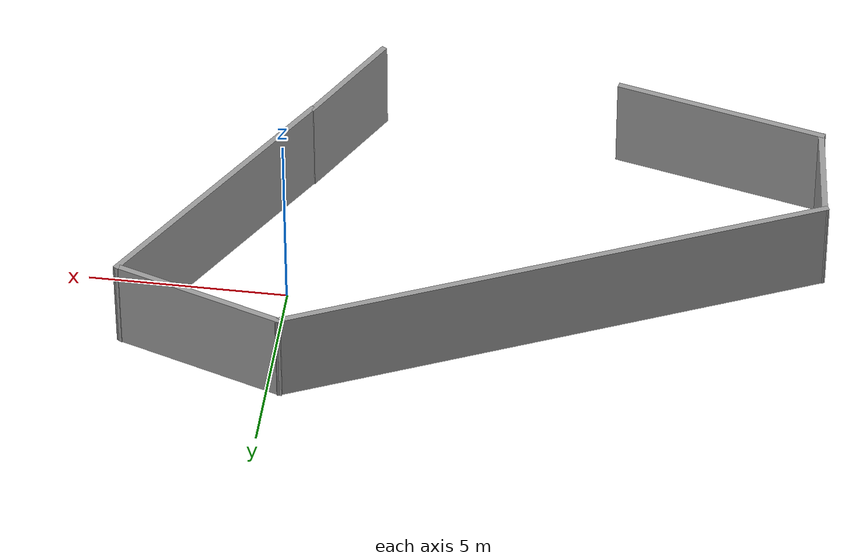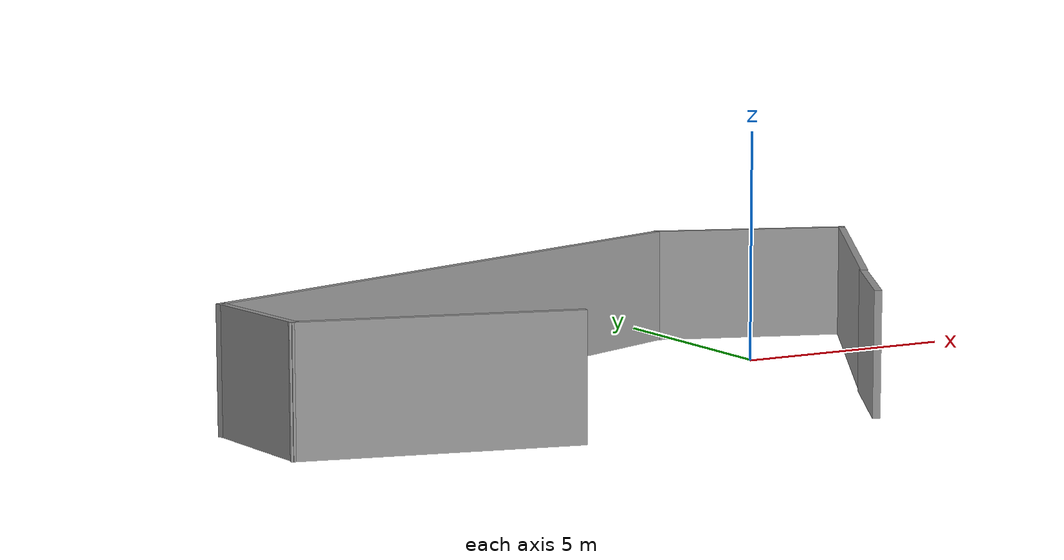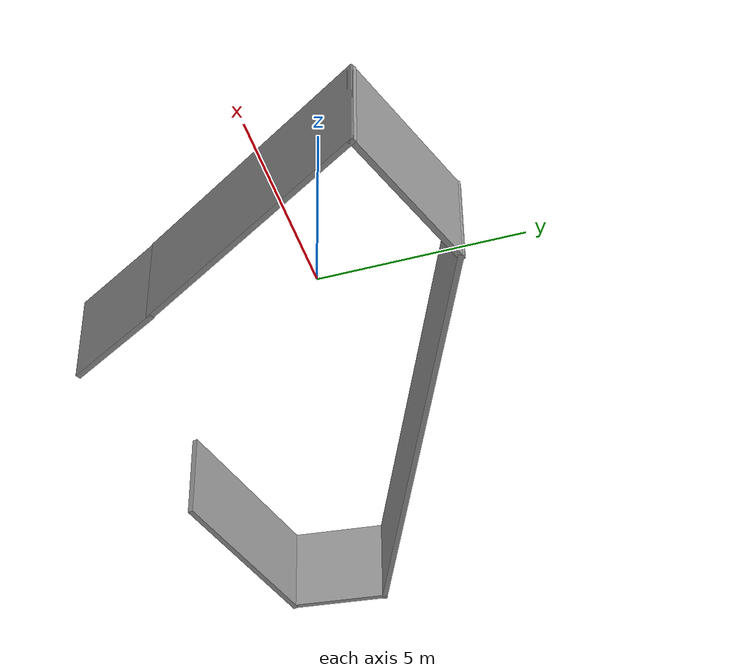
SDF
<?xml version='1.0'?>
<sdf version='1.7'>
  <model name='map_for_drone'>
    <pose>-4.65031 -1.65481 0 0 -0 0</pose>
    <link name='Wall_2'>
      <collision name='Wall_2_Collision'>
        <geometry>
          <box>
            <size>14.15 0.15 2.5</size>
          </box>
        </geometry>
        <pose>0 0 1.25 0 -0 0</pose>
      </collision>
      <visual name='Wall_2_Visual'>
        <pose>0 0 1.25 0 -0 0</pose>
        <geometry>
          <box>
            <size>14.15 0.15 2.5</size>
          </box>
        </geometry>
        <material>
          <script>
            <uri>file://media/materials/scripts/gazebo.material</uri>
            <name>Gazebo/Grey</name>
          </script>
          <ambient>1 1 1 1</ambient>
        </material>
        <meta>
          <layer>0</layer>
        </meta>
      </visual>
      <pose>-2.08038 2.21455 0 0 -0 0.41658</pose>
    </link>
    <link name='Wall_3'>
      <collision name='Wall_3_Collision'>
        <geometry>
          <box>
            <size>4.51692 0.15 2.5</size>
          </box>
        </geometry>
        <pose>0 0 1.25 0 -0 0</pose>
      </collision>
      <visual name='Wall_3_Visual'>
        <pose>0 0 1.25 0 -0 0</pose>
        <geometry>
          <box>
            <size>4.51692 0.15 2.5</size>
          </box>
        </geometry>
        <material>
          <script>
            <uri>file://media/materials/scripts/gazebo.material</uri>
            <name>Gazebo/Grey</name>
          </script>
          <ambient>1 1 1 1</ambient>
        </material>
        <meta>
          <layer>0</layer>
        </meta>
      </visual>
      <pose>6.38175 4.37744 0 0 -0 -0.311675</pose>
    </link>
    <link name='Wall_4'>
      <collision name='Wall_4_Collision'>
        <geometry>
          <box>
            <size>7.5255 0.15 2.5</size>
          </box>
        </geometry>
        <pose>0 0 1.25 0 -0 0</pose>
      </collision>
      <visual name='Wall_4_Visual'>
        <pose>0 0 1.25 0 -0 0</pose>
        <geometry>
          <box>
            <size>7.5255 0.15 2.5</size>
          </box>
        </geometry>
        <material>
          <script>
            <uri>file://media/materials/scripts/gazebo.material</uri>
            <name>Gazebo/Grey</name>
          </script>
          <ambient>1 1 1 1</ambient>
        </material>
        <meta>
          <layer>0</layer>
        </meta>
      </visual>
      <pose>6.54621 0.56628 0 0 -0 -2.12199</pose>
    </link>
    <link name='Wall_5'>
      <collision name='Wall_5_Collision'>
        <geometry>
          <box>
            <size>3 0.15 2.5</size>
          </box>
        </geometry>
        <pose>0 0 1.25 0 -0 0</pose>
      </collision>
      <visual name='Wall_5_Visual'>
        <pose>0 0 1.25 0 -0 0</pose>
        <geometry>
          <box>
            <size>3 0.15 2.5</size>
          </box>
        </geometry>
        <material>
          <script>
            <uri>file://media/materials/scripts/gazebo.material</uri>
            <name>Gazebo/Grey</name>
          </script>
          <ambient>1 1 1 1</ambient>
        </material>
        <meta>
          <layer>0</layer>
        </meta>
      </visual>
      <pose>3.87928 -3.8094 0 0 -0 -2.0944</pose>
    </link>
    <link name='Wall_7'>
      <collision name='Wall_7_Collision'>
        <geometry>
          <box>
            <size>2.80668 0.15 2.5</size>
          </box>
        </geometry>
        <pose>0 0 1.25 0 -0 0</pose>
      </collision>
      <visual name='Wall_7_Visual'>
        <pose>0 0 1.25 0 -0 0</pose>
        <geometry>
          <box>
            <size>2.80668 0.15 2.5</size>
          </box>
        </geometry>
        <material>
          <script>
            <uri>file://media/materials/scripts/gazebo.material</uri>
            <name>Gazebo/Grey</name>
          </script>
          <ambient>1 1 1 1</ambient>
        </material>
        <meta>
          <layer>0</layer>
        </meta>
      </visual>
      <pose>-8.31182 -1.93747 0 0 -0 -1.45579</pose>
    </link>
    <link name='Wall_8'>
      <collision name='Wall_8_Collision'>
        <geometry>
          <box>
            <size>5.46153 0.15 2.5</size>
          </box>
        </geometry>
        <pose>0 0 1.25 0 -0 0</pose>
      </collision>
      <visual name='Wall_8_Visual'>
        <pose>0 0 1.25 0 -0 0</pose>
        <geometry>
          <box>
            <size>5.46153 0.15 2.5</size>
          </box>
        </geometry>
        <material>
          <script>
            <uri>file://media/materials/scripts/gazebo.material</uri>
            <name>Gazebo/Grey</name>
          </script>
          <ambient>1 1 1 1</ambient>
        </material>
        <meta>
          <layer>0</layer>
        </meta>
      </visual>
      <pose>-5.59016 -3.85864 0 0 -0 -0.228511</pose>
    </link>
    <static>1</static>
  </model>
</sdf>
